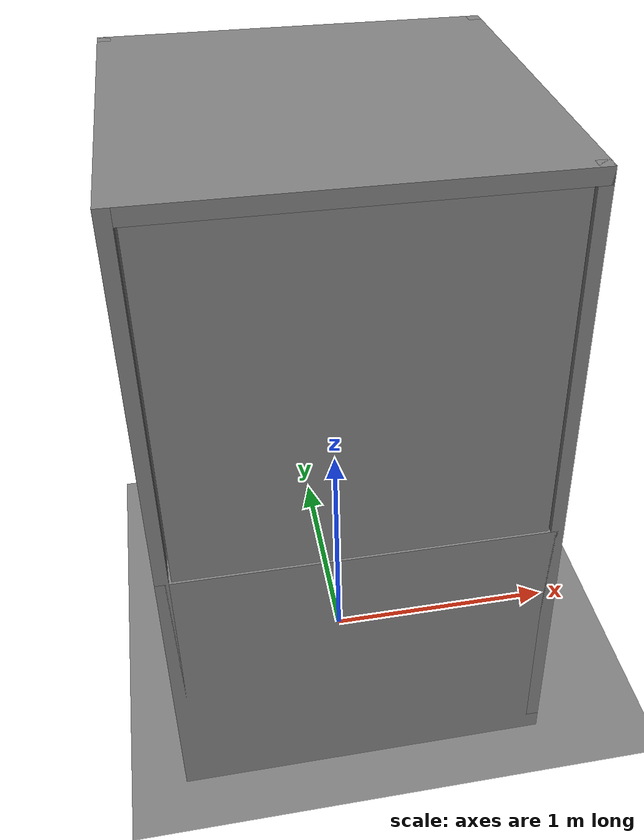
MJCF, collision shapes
<mujoco model="aic_world">
  <compiler angle="radian"/>

  <option gravity="0 0 -9.8" magnetic="5.5645e-06 2.28758e-05 -4.23884e-05"/>

  <visual>
    <headlight ambient="0 0 0" diffuse="0 0 0" specular="0 0 0"/>
  </visual>

  <default>
    <default class="world_default"/>
    <default class="cable_default">
      <joint damping="0.2"/>
    </default>
    <default class="sc_port_default">
      <geom friction="0.5 0.5"/>
    </default>
    <default class="nic_card_default">
      <geom friction="0.1 0.005 0.1"/>
    </default>
  </default>

  <extension>
    <plugin plugin="mujoco.elasticity.cable">
      <instance name="composite">
        <config key="twist" value="1e2"/>
        <config key="bend" value="4e1"/>
      </instance>
    </plugin>
  </extension>

  <asset>
    <texture type="2d" colorspace="linear" name="texture_40c09d03e70381a6858aaba3470a3c41133384b4031fa9131cbb5f4dc5cd3986_floor_visual_Plane" file="40c09d03e70381a6858aaba3470a3c41133384b4031fa9131cbb5f4dc5cd3986_floor_visual_b3a94635-54d6beff6424435d3828cb4c8a1278d9ea3964b0.png"/>
    <texture type="2d" colorspace="linear" name="texture_905de86c942092710a3b3b7c801a4a971c55ce1db8e8e66de2d222bccbf68920_sc_plug_visual_merged_0" file="905de86c942092710a3b3b7c801a4a971c55ce1db8e8e66de2d222bccbf68920_sc_plug_visual_5875f865-48f62b2f4840d852c7f39a01e6c183037dc1485b.png"/>
    <texture type="2d" colorspace="linear" name="texture_98c00f0bc914fd28942a5b5b497872ae817e62fdc7c7810ecaa8069a9692ceaf_lc_plug_visual_merged_0" file="98c00f0bc914fd28942a5b5b497872ae817e62fdc7c7810ecaa8069a9692ceaf_lc_plug_visual_03dabf32-0905e8a8aa368516e682f6ec84258100cdb4efef.png"/>
    <texture type="2d" colorspace="linear" name="texture_bac71237ef67393fcec4e1a5deb385aa5fe0d294b7e1711efc530aa1463ef5d6_sfp_module_visual_Body.005" file="bac71237ef67393fcec4e1a5deb385aa5fe0d294b7e1711efc530aa1463ef5d6_sfp_module_visual_8fc63b58-7471eafc55dcb668ae68adfe70a147b363ba3be9.png"/>
    <texture type="2d" colorspace="linear" name="texture_bac71237ef67393fcec4e1a5deb385aa5fe0d294b7e1711efc530aa1463ef5d6_sfp_module_visual_Body.005_1" file="bac71237ef67393fcec4e1a5deb385aa5fe0d294b7e1711efc530aa1463ef5d6_sfp_module_visual_1f09e86a-a4dc4a72bd6e778067310898a5c179607fd78966.png"/>
    <texture type="2d" colorspace="linear" name="texture_20c3c21d33ad91c02acd28d29c6619e4def43e4ad97f9963f1f40c69556a8667_nic_card_visual_merged_0" file="20c3c21d33ad91c02acd28d29c6619e4def43e4ad97f9963f1f40c69556a8667_nic_card_visual_45ced356-decb3c11fd49e8be2155fa2b1c64d354b4b1809a.png"/>
    <texture type="2d" colorspace="linear" name="texture_20c3c21d33ad91c02acd28d29c6619e4def43e4ad97f9963f1f40c69556a8667_nic_card_visual_merged_1" file="20c3c21d33ad91c02acd28d29c6619e4def43e4ad97f9963f1f40c69556a8667_nic_card_visual_39dce63a-b1ab28e3f7e42255c5bb13a337e50008ebdbcb02.png"/>
    <material name="material_e35a3160deff872a7475b59ee7dfb4969f85c5fc103de22f82442b320b077c85_enclosure_visual_V1014952.001" class="world_default" shininess="30" rgba="0.290196 0.290196 0.290196 1"/>
    <material name="material_e35a3160deff872a7475b59ee7dfb4969f85c5fc103de22f82442b320b077c85_enclosure_visual_V1014952.001_1" class="world_default" shininess="30" rgba="0.129412 0.129412 0.133333 1"/>
    <material name="material_e35a3160deff872a7475b59ee7dfb4969f85c5fc103de22f82442b320b077c85_light_visual_Plane.001" class="world_default" shininess="30" rgba="0.5 0.5 0.5 1"/>
    <material name="material_40c09d03e70381a6858aaba3470a3c41133384b4031fa9131cbb5f4dc5cd3986_floor_visual_Plane" class="world_default" texture="texture_40c09d03e70381a6858aaba3470a3c41133384b4031fa9131cbb5f4dc5cd3986_floor_visual_Plane" shininess="30" rgba="0.5 0.5 0.5 1"/>
    <material name="material_40c09d03e70381a6858aaba3470a3c41133384b4031fa9131cbb5f4dc5cd3986_walls_visual_Curve.001" class="world_default" shininess="30" rgba="0.0196078 0.0196078 0.0196078 1"/>
    <material name="material_40c09d03e70381a6858aaba3470a3c41133384b4031fa9131cbb5f4dc5cd3986_walls_visual_merged_1" class="world_default" shininess="30" rgba="0.262745 0.262745 0.262745 1"/>
    <material name="material_40c09d03e70381a6858aaba3470a3c41133384b4031fa9131cbb5f4dc5cd3986_walls_visual_Plane.003_1" class="world_default" shininess="30" rgba="0.8 0.8 0.8 1"/>
    <material name="material_40c09d03e70381a6858aaba3470a3c41133384b4031fa9131cbb5f4dc5cd3986_walls_visual_Plane.002" class="world_default" shininess="30" rgba="0.207843 0.207843 0.207843 1"/>
    <material name="material_905de86c942092710a3b3b7c801a4a971c55ce1db8e8e66de2d222bccbf68920_sc_plug_visual_merged_0" class="world_default" texture="texture_905de86c942092710a3b3b7c801a4a971c55ce1db8e8e66de2d222bccbf68920_sc_plug_visual_merged_0" shininess="30" rgba="0.5 0.5 0.5 1"/>
    <material name="material_98c00f0bc914fd28942a5b5b497872ae817e62fdc7c7810ecaa8069a9692ceaf_lc_plug_visual_merged_0" class="world_default" texture="texture_98c00f0bc914fd28942a5b5b497872ae817e62fdc7c7810ecaa8069a9692ceaf_lc_plug_visual_merged_0" shininess="30" rgba="0.5 0.5 0.5 1"/>
    <material name="material_bac71237ef67393fcec4e1a5deb385aa5fe0d294b7e1711efc530aa1463ef5d6_sfp_module_visual_Body.005" class="world_default" texture="texture_bac71237ef67393fcec4e1a5deb385aa5fe0d294b7e1711efc530aa1463ef5d6_sfp_module_visual_Body.005" shininess="30" rgba="0.5 0.5 0.5 1"/>
    <material name="material_bac71237ef67393fcec4e1a5deb385aa5fe0d294b7e1711efc530aa1463ef5d6_sfp_module_visual_Body.005_1" class="world_default" texture="texture_bac71237ef67393fcec4e1a5deb385aa5fe0d294b7e1711efc530aa1463ef5d6_sfp_module_visual_Body.005_1" shininess="30" rgba="0.5 0.5 0.5 1"/>
    <material name="material_7689a9b747d6b156977e79b2206b5e29540e3d66cde22b2879e5c8aaf9f30d90_base_visual_ISO_4762_-_M3_x_8.019" class="world_default" shininess="30" rgba="0.0352941 0.0352941 0.0313726 1"/>
    <material name="material_7689a9b747d6b156977e79b2206b5e29540e3d66cde22b2879e5c8aaf9f30d90_base_visual_ISO_4762_-_M3_x_8.019_1" class="world_default" shininess="30" rgba="0.0313726 0.0313726 0.0313726 1"/>
    <material name="material_7689a9b747d6b156977e79b2206b5e29540e3d66cde22b2879e5c8aaf9f30d90_base_visual_ISO_4762_-_M3_x_8.019_2" class="world_default" shininess="30" rgba="0.215686 0 0.215686 1"/>
    <material name="material_20c3c21d33ad91c02acd28d29c6619e4def43e4ad97f9963f1f40c69556a8667_nic_card_mount_visual_ISO_4762_-_M2_x_8.054" class="world_default" shininess="30" rgba="0.0352941 0.0352941 0.0313726 1"/>
    <material name="material_20c3c21d33ad91c02acd28d29c6619e4def43e4ad97f9963f1f40c69556a8667_nic_card_mount_visual_ISO_4762_-_M2_x_8.054_1" class="world_default" shininess="30" rgba="0.0313726 0.0313726 0.0313726 1"/>
    <material name="material_20c3c21d33ad91c02acd28d29c6619e4def43e4ad97f9963f1f40c69556a8667_nic_card_visual_merged_0" class="world_default" texture="texture_20c3c21d33ad91c02acd28d29c6619e4def43e4ad97f9963f1f40c69556a8667_nic_card_visual_merged_0" shininess="30" rgba="0.5 0.5 0.5 1"/>
    <material name="material_20c3c21d33ad91c02acd28d29c6619e4def43e4ad97f9963f1f40c69556a8667_nic_card_visual_merged_1" class="world_default" texture="texture_20c3c21d33ad91c02acd28d29c6619e4def43e4ad97f9963f1f40c69556a8667_nic_card_visual_merged_1" shininess="30" rgba="0.5 0.5 0.5 1"/>
    <material name="material_20c3c21d33ad91c02acd28d29c6619e4def43e4ad97f9963f1f40c69556a8667_nic_card_visual_Plane.029" class="world_default" shininess="30" rgba="0.0235294 0.0392157 0.0117647 1"/>
    <material name="material_20c3c21d33ad91c02acd28d29c6619e4def43e4ad97f9963f1f40c69556a8667_nic_card_visual_Cube.007" class="world_default" shininess="30" rgba="0 0 0 1"/>
    <mesh name="e35a3160deff872a7475b59ee7dfb4969f85c5fc103de22f82442b320b077c85_enclosure_visual_V1014952.001" class="world_default" content_type="model/obj" file="e35a3160deff872a7475b59ee7dfb4969f85c5fc103de22f82442b320b077c85_enclosure_visual_V1014952.001-c990efe7b9dfe87aa065fd6eb3960ce051ae2aef.obj" inertia="shell"/>
    <mesh name="e35a3160deff872a7475b59ee7dfb4969f85c5fc103de22f82442b320b077c85_enclosure_visual_V1014952.001_1" class="world_default" content_type="model/obj" file="e35a3160deff872a7475b59ee7dfb4969f85c5fc103de22f82442b320b077c85_enclosure_visual_V1014952.001_1-807e07de06af157c84b994a232617507a7059420.obj" inertia="shell"/>
    <mesh name="e35a3160deff872a7475b59ee7dfb4969f85c5fc103de22f82442b320b077c85_light_visual_Plane.001" class="world_default" content_type="model/obj" file="e35a3160deff872a7475b59ee7dfb4969f85c5fc103de22f82442b320b077c85_light_visual_Plane.001-a8a774a80bc239d73769a498eae528b206eebcb0.obj" inertia="shell"/>
    <mesh name="40c09d03e70381a6858aaba3470a3c41133384b4031fa9131cbb5f4dc5cd3986_floor_visual_Plane" class="world_default" content_type="model/obj" file="40c09d03e70381a6858aaba3470a3c41133384b4031fa9131cbb5f4dc5cd3986_floor_visual_Plane-4dc7f6150ad7c239769a0860a01efb2015657aea.obj" inertia="shell"/>
    <mesh name="40c09d03e70381a6858aaba3470a3c41133384b4031fa9131cbb5f4dc5cd3986_walls_visual_Curve.001" class="world_default" content_type="model/obj" file="40c09d03e70381a6858aaba3470a3c41133384b4031fa9131cbb5f4dc5cd3986_walls_visual_Curve.001-4d7c79ac2e958832fdb15589262141ca1b80d3a5.obj" inertia="shell"/>
    <mesh name="40c09d03e70381a6858aaba3470a3c41133384b4031fa9131cbb5f4dc5cd3986_walls_visual_merged_1" class="world_default" content_type="model/obj" file="40c09d03e70381a6858aaba3470a3c41133384b4031fa9131cbb5f4dc5cd3986_walls_visual_merged_1-359a22140d528747936e80bedf90e1437a177a9f.obj" inertia="shell"/>
    <mesh name="40c09d03e70381a6858aaba3470a3c41133384b4031fa9131cbb5f4dc5cd3986_walls_visual_Plane.003_1" class="world_default" content_type="model/obj" file="40c09d03e70381a6858aaba3470a3c41133384b4031fa9131cbb5f4dc5cd3986_walls_visual_Plane.003_1-cd05ed21fa19a2784fb772d7519abf7c31c8b85f.obj" inertia="shell"/>
    <mesh name="40c09d03e70381a6858aaba3470a3c41133384b4031fa9131cbb5f4dc5cd3986_walls_visual_Plane.002" class="world_default" content_type="model/obj" file="40c09d03e70381a6858aaba3470a3c41133384b4031fa9131cbb5f4dc5cd3986_walls_visual_Plane.002-ee4f781765eec46c2256d941981732d4b1857f24.obj" inertia="shell"/>
    <mesh name="905de86c942092710a3b3b7c801a4a971c55ce1db8e8e66de2d222bccbf68920_sc_plug_visual_merged_0" class="world_default" content_type="model/obj" file="905de86c942092710a3b3b7c801a4a971c55ce1db8e8e66de2d222bccbf68920_sc_plug_visual_merged_0-67f94accf247f722dd4954d7448d7956402901f2.obj" inertia="shell"/>
    <mesh name="98c00f0bc914fd28942a5b5b497872ae817e62fdc7c7810ecaa8069a9692ceaf_lc_plug_visual_merged_0" class="world_default" content_type="model/obj" file="98c00f0bc914fd28942a5b5b497872ae817e62fdc7c7810ecaa8069a9692ceaf_lc_plug_visual_merged_0-fdaf59710fc3cc118a7df05add4ff4205edda4ef.obj" inertia="shell"/>
    <mesh name="bac71237ef67393fcec4e1a5deb385aa5fe0d294b7e1711efc530aa1463ef5d6_sfp_module_visual_Body.005" class="world_default" content_type="model/obj" file="bac71237ef67393fcec4e1a5deb385aa5fe0d294b7e1711efc530aa1463ef5d6_sfp_module_visual_Body.005-f93147e1e403de321fb70c06a4b1e00f20feb9fd.obj" inertia="shell"/>
    <mesh name="bac71237ef67393fcec4e1a5deb385aa5fe0d294b7e1711efc530aa1463ef5d6_sfp_module_visual_Body.005_1" class="world_default" content_type="model/obj" file="bac71237ef67393fcec4e1a5deb385aa5fe0d294b7e1711efc530aa1463ef5d6_sfp_module_visual_Body.005_1-4af964a95522e2593eb6381eca4f09ef239782c7.obj" inertia="shell"/>
    <mesh name="7689a9b747d6b156977e79b2206b5e29540e3d66cde22b2879e5c8aaf9f30d90_base_visual_ISO_4762_-_M3_x_8.019" class="world_default" content_type="model/obj" file="7689a9b747d6b156977e79b2206b5e29540e3d66cde22b2879e5c8aaf9f30d90_base_visual_ISO_4762_-_M3_x_8.019-f814bb518c42769543ab6246809f3fe4af5c2b64.obj" inertia="shell"/>
    <mesh name="7689a9b747d6b156977e79b2206b5e29540e3d66cde22b2879e5c8aaf9f30d90_base_visual_ISO_4762_-_M3_x_8.019_1" class="world_default" content_type="model/obj" file="7689a9b747d6b156977e79b2206b5e29540e3d66cde22b2879e5c8aaf9f30d90_base_visual_ISO_4762_-_M3_x_8.019_1-0b276ba9910a7642121235b62d2afc47c3995782.obj" inertia="shell"/>
    <mesh name="7689a9b747d6b156977e79b2206b5e29540e3d66cde22b2879e5c8aaf9f30d90_base_visual_ISO_4762_-_M3_x_8.019_2" class="world_default" content_type="model/obj" file="7689a9b747d6b156977e79b2206b5e29540e3d66cde22b2879e5c8aaf9f30d90_base_visual_ISO_4762_-_M3_x_8.019_2-7b96569be9572803417c5650ee83c9c883b44191.obj" inertia="shell"/>
    <mesh name="20c3c21d33ad91c02acd28d29c6619e4def43e4ad97f9963f1f40c69556a8667_nic_card_mount_visual_ISO_4762_-_M2_x_8.054" class="world_default" content_type="model/obj" file="20c3c21d33ad91c02acd28d29c6619e4def43e4ad97f9963f1f40c69556a8667_nic_card_mount_visual_ISO_4762_-_M2_x_8.054-865f98896565b646973302f5cc3bb20e1474682a.obj" inertia="shell"/>
    <mesh name="20c3c21d33ad91c02acd28d29c6619e4def43e4ad97f9963f1f40c69556a8667_nic_card_mount_visual_ISO_4762_-_M2_x_8.054_1" class="world_default" content_type="model/obj" file="20c3c21d33ad91c02acd28d29c6619e4def43e4ad97f9963f1f40c69556a8667_nic_card_mount_visual_ISO_4762_-_M2_x_8.054_1-5adcf23490bd5794ededbd17ac1064f40ca2f1d8.obj" inertia="shell"/>
    <mesh name="20c3c21d33ad91c02acd28d29c6619e4def43e4ad97f9963f1f40c69556a8667_nic_card_visual_merged_0" class="world_default" content_type="model/obj" file="20c3c21d33ad91c02acd28d29c6619e4def43e4ad97f9963f1f40c69556a8667_nic_card_visual_merged_0-b45f6200bfaa68e87732b114c99af8b477e66413.obj" inertia="shell"/>
    <mesh name="20c3c21d33ad91c02acd28d29c6619e4def43e4ad97f9963f1f40c69556a8667_nic_card_visual_merged_1" class="world_default" content_type="model/obj" file="20c3c21d33ad91c02acd28d29c6619e4def43e4ad97f9963f1f40c69556a8667_nic_card_visual_merged_1-0e349b7b61b9f4e172feb5320f1e8146f966f938.obj" inertia="shell"/>
    <mesh name="20c3c21d33ad91c02acd28d29c6619e4def43e4ad97f9963f1f40c69556a8667_nic_card_visual_Plane.029" class="world_default" content_type="model/obj" file="20c3c21d33ad91c02acd28d29c6619e4def43e4ad97f9963f1f40c69556a8667_nic_card_visual_Plane.029-3e628f059a97b4e803370a2b5e0abfcfac063972.obj" inertia="shell"/>
    <mesh name="20c3c21d33ad91c02acd28d29c6619e4def43e4ad97f9963f1f40c69556a8667_nic_card_visual_Cube.007" class="world_default" content_type="model/obj" file="20c3c21d33ad91c02acd28d29c6619e4def43e4ad97f9963f1f40c69556a8667_nic_card_visual_Cube.007-f8fbe4a2582482ceb99cb3e87bdf6d5a3daf05ec.obj" inertia="shell"/>
  </asset>

  <worldbody>
    <light name="enclosure_light" class="world_default" pos="0 0 2.5" dir="0 0 -1" intensity="0.4" range="2" attenuation="1 0.01 0.001" cutoff="114.592" exponent="0.993023" diffuse="1 1 1" specular="0.1 0.1 0.1"/>
    <light name="ceiling_01" class="world_default" pos="2 2 6" dir="0 0 -1" intensity="2" range="9" castshadow="false" attenuation="1 0.01 0.001" cutoff="360" diffuse="1 1 1" specular="0.1 0.1 0.1"/>
    <light name="ceiling_02" class="world_default" pos="-2 -2 6" dir="0 0 -1" intensity="2" range="9" castshadow="false" attenuation="1 0.01 0.001" cutoff="360" diffuse="1 1 1" specular="0.1 0.1 0.1"/>
    <body name="enclosure_link">
      <inertial pos="0 0 0" mass="1" diaginertia="1 1 1"/>
      <geom name="v1015026001_collider_box" class="world_default" size="0.75 0.569492 0.75" pos="-0.010998 0.009283 0.569706" quat="1.22475e-07 -1.22474e-07 0.707107 0.707107" type="box" group="3"/>
      <geom name="v1015028001_collider_box" class="world_default" size="0.0254 0.0254 1.25" pos="0.713602 0.733883 1.3292" quat="1.73205e-07 0 0 -1" type="box" group="3"/>
      <geom name="v1015013001_collider_box" class="world_default" size="0.0304 0.75 0.75" pos="-0.010998 0.009283 2.5488" quat="0.707107 0 -0.707107 0" type="box" group="3"/>
      <geom name="v1015027_collider_box" class="world_default" size="0.0254 0.0254 1.25" pos="-0.735598 0.733883 1.3292" quat="1.73205e-07 0 0 -1" type="box" group="3"/>
      <geom name="v1015029_collider_box" class="world_default" size="0.0254 0.0254 1.25" pos="-0.735598 -0.715317 1.3292" quat="0 1.73205e-07 -1 -1.73205e-07" type="box" group="3"/>
      <geom name="v1015030_collider_box" class="world_default" size="0.0254 0.0254 1.25" pos="0.713602 -0.715317 1.3292" quat="1.73205e-07 0 0 -1" type="box" group="3"/>
      <geom name="enclosure_visual" class="world_default" type="mesh" contype="0" conaffinity="0" material="material_e35a3160deff872a7475b59ee7dfb4969f85c5fc103de22f82442b320b077c85_enclosure_visual_V1014952.001" mesh="e35a3160deff872a7475b59ee7dfb4969f85c5fc103de22f82442b320b077c85_enclosure_visual_V1014952.001"/>
      <geom name="enclosure_visual_0" class="world_default" type="mesh" contype="0" conaffinity="0" material="material_e35a3160deff872a7475b59ee7dfb4969f85c5fc103de22f82442b320b077c85_enclosure_visual_V1014952.001_1" mesh="e35a3160deff872a7475b59ee7dfb4969f85c5fc103de22f82442b320b077c85_enclosure_visual_V1014952.001_1"/>
      <geom name="light_visual" class="world_default" type="mesh" contype="0" conaffinity="0" material="material_e35a3160deff872a7475b59ee7dfb4969f85c5fc103de22f82442b320b077c85_light_visual_Plane.001" mesh="e35a3160deff872a7475b59ee7dfb4969f85c5fc103de22f82442b320b077c85_light_visual_Plane.001"/>
    </body>
    <body name="enclosure_walls_link">
      <inertial pos="0 0 0" mass="1" diaginertia="1 1 1"/>
      <geom name="v1015062006_collider_box" class="world_default" size="0.0250005 0.6796 0.6892" pos="-0.010998 0.734284 1.8288" quat="0.5 0.5 -0.5 -0.5" type="box" group="3"/>
      <geom name="v1015062005_collider_box" class="world_default" size="0.6892 0.6796 0.025" pos="-0.735998 0.009283 1.8288" quat="0.5 0.5 -0.5 -0.5" type="box" group="3"/>
      <geom name="v1015062007_collider_box" class="world_default" size="0.025 0.6846 0.6892" pos="-0.010998 -0.715717 1.8338" quat="0.5 0.5 -0.5 -0.5" type="box" group="3"/>
      <geom name="v1015062008_collider_box" class="world_default" size="0.6892 0.6846 0.025" pos="0.714002 0.009283 1.8338" quat="0.5 0.5 -0.5 -0.5" type="box" group="3"/>
    </body>
    <body name="floor_link">
      <inertial pos="0 0 0" mass="1" diaginertia="1 1 1"/>
      <geom name="floor_cylinder" class="world_default" size="5 5 1" type="plane" group="3"/>
      <geom name="floor_visual" class="world_default" type="mesh" contype="0" conaffinity="0" material="material_40c09d03e70381a6858aaba3470a3c41133384b4031fa9131cbb5f4dc5cd3986_floor_visual_Plane" mesh="40c09d03e70381a6858aaba3470a3c41133384b4031fa9131cbb5f4dc5cd3986_floor_visual_Plane"/>
      <geom name="walls_visual" class="world_default" type="mesh" contype="0" conaffinity="0" material="material_40c09d03e70381a6858aaba3470a3c41133384b4031fa9131cbb5f4dc5cd3986_walls_visual_Curve.001" mesh="40c09d03e70381a6858aaba3470a3c41133384b4031fa9131cbb5f4dc5cd3986_walls_visual_Curve.001"/>
      <geom name="walls_visual_0" class="world_default" type="mesh" contype="0" conaffinity="0" material="material_40c09d03e70381a6858aaba3470a3c41133384b4031fa9131cbb5f4dc5cd3986_walls_visual_merged_1" mesh="40c09d03e70381a6858aaba3470a3c41133384b4031fa9131cbb5f4dc5cd3986_walls_visual_merged_1"/>
      <geom name="walls_visual_1" class="world_default" type="mesh" contype="0" conaffinity="0" material="material_40c09d03e70381a6858aaba3470a3c41133384b4031fa9131cbb5f4dc5cd3986_walls_visual_Plane.003_1" mesh="40c09d03e70381a6858aaba3470a3c41133384b4031fa9131cbb5f4dc5cd3986_walls_visual_Plane.003_1"/>
      <geom name="walls_visual_2" class="world_default" type="mesh" contype="0" conaffinity="0" material="material_40c09d03e70381a6858aaba3470a3c41133384b4031fa9131cbb5f4dc5cd3986_walls_visual_Plane.002" mesh="40c09d03e70381a6858aaba3470a3c41133384b4031fa9131cbb5f4dc5cd3986_walls_visual_Plane.002"/>
    </body>
    <body name="cable_end_0" childclass="cable_default" pos="0.171400 0.020606 1.511889" quat="0.712741 0.312130 -0.052173 0.625982">
      <freejoint name="cable_end_0_free"/>
      <inertial pos="0 0 0" mass="0.0025" diaginertia="1e-6 1e-6 1e-6"/>
      <geom name="base_vis" class="world_default" size="0.002" contype="0" conaffinity="0"/>
      <plugin instance="composite"/>
      <body name="cable_connection_0" pos="-1.15358e-08 3.23085e-08 -1.51889e-07" quat="0.924832 -0.0904407 -0.328827 0.168458">
        <inertial pos="0 0 0" mass="0.01" diaginertia="1e-6 1e-6 1e-6"/>
        <joint name="joint_connection_end_0" class="world_default" pos="0 0 0" type="ball" damping="0.2"/>
        <geom name="visual_0_0" class="world_default" size="0.001 0.00180278" pos="-0.00180278 0.002 0" quat="0.676768 0.204909 0.676764 -0.204908" type="cylinder" contype="0" conaffinity="0"/>
        <geom name="visual_1_0" class="world_default" size="0.001 0.00180278" pos="-0.00180278 -0.002 0" quat="0.676768 -0.204909 0.676764 0.204908" type="cylinder" contype="0" conaffinity="0"/>
        <plugin instance="composite"/>
        <body name="link_1" pos="0.0020611 -0.00581162 -0.0231945" quat="-0.0746205 -0.2673 -0.954864 0.10591">
          <inertial pos="0 0 0" mass="0.0025" diaginertia="1e-6 1e-6 1e-6"/>
          <joint name="joint_end_0" pos="0 0 -0.024" type="ball"/>
          <geom name="link_1_collision" size="0.002 0.018" pos="0 0 0.006" type="cylinder" group="3"/>
          <geom name="sphere_1_collision" size="0.002" pos="0 0 0.024" group="3"/>
          <geom name="link_1_vis" size="0.002 0.024" type="cylinder" contype="0" conaffinity="0"/>
          <geom name="sphere_1_vis" size="0.002" pos="0 0 0.024" contype="0" conaffinity="0"/>
          <plugin instance="composite"/>
          <body name="link_2" pos="0.00623053 -0.00759574 0.0458975" quat="0.97762 0.158907 0.136222 -0.0212393">
            <inertial pos="0 0 0" mass="0.0025" diaginertia="1e-6 1e-6 1e-6"/>
            <joint name="joint_1" pos="0 0 -0.024" type="ball"/>
            <geom name="link_2_collision" size="0.002 0.024" type="cylinder" group="3"/>
            <geom name="sphere_2_collision" size="0.002" pos="0 0 0.024" group="3"/>
            <geom name="link_2_vis" size="0.002 0.024" type="cylinder" contype="0" conaffinity="0"/>
            <geom name="sphere_2_vis" size="0.002" pos="0 0 0.024" contype="0" conaffinity="0"/>
            <plugin instance="composite"/>
            <body name="link_3" pos="0.000484761 -0.00664666 0.0470565" quat="0.989882 0.139594 0.0132513 -0.0216966">
              <inertial pos="0 0 0" mass="0.0025" diaginertia="1e-6 1e-6 1e-6"/>
              <joint name="joint_2" pos="0 0 -0.024" type="ball"/>
              <geom name="link_3_collision" size="0.002 0.024" type="cylinder" group="3"/>
              <geom name="sphere_3_collision" size="0.002" pos="0 0 0.024" group="3"/>
              <geom name="link_3_vis" size="0.002 0.024" type="cylinder" contype="0" conaffinity="0"/>
              <geom name="sphere_3_vis" size="0.002" pos="0 0 0.024" contype="0" conaffinity="0"/>
              <plugin instance="composite"/>
              <body name="link_4" pos="-0.00211262 -0.00462385 0.0474555" quat="0.994001 0.0979584 -0.0418346 -0.024834">
                <inertial pos="0 0 0" mass="0.0025" diaginertia="1e-6 1e-6 1e-6"/>
                <joint name="joint_3" pos="0 0 -0.024" type="ball"/>
                <geom name="link_4_collision" size="0.002 0.024" type="cylinder" group="3"/>
                <geom name="sphere_4_collision" size="0.002" pos="0 0 0.024" group="3"/>
                <geom name="link_4_vis" size="0.002 0.024" type="cylinder" contype="0" conaffinity="0"/>
                <geom name="sphere_4_vis" size="0.002" pos="0 0 0.024" contype="0" conaffinity="0"/>
                <plugin instance="composite"/>
                <body name="link_5" pos="-0.00360829 -0.00309056 0.0475256" quat="0.994231 0.0677031 -0.0728716 -0.0401431">
                  <inertial pos="0 0 0" mass="0.0025" diaginertia="1e-6 1e-6 1e-6"/>
                  <joint name="joint_4" pos="0 0 -0.024" type="ball"/>
                  <geom name="link_5_collision" size="0.002 0.024" type="cylinder" group="3"/>
                  <geom name="sphere_5_collision" size="0.002" pos="0 0 0.024" group="3"/>
                  <geom name="link_5_vis" size="0.002 0.024" type="cylinder" contype="0" conaffinity="0"/>
                  <geom name="sphere_5_vis" size="0.002" pos="0 0 0.024" contype="0" conaffinity="0"/>
                  <plugin instance="composite"/>
                  <body name="link_6" pos="-0.00394715 -0.00175287 0.0476085" quat="0.9939 0.041842 -0.0800956 -0.0632216">
                    <inertial pos="0 0 0" mass="0.0025" diaginertia="1e-6 1e-6 1e-6"/>
                    <joint name="joint_5" pos="0 0 -0.024" type="ball"/>
                    <geom name="link_6_collision" size="0.002 0.024" type="cylinder" group="3"/>
                    <geom name="sphere_6_collision" size="0.002" pos="0 0 0.024" group="3"/>
                    <geom name="link_6_vis" size="0.002 0.024" type="cylinder" contype="0" conaffinity="0"/>
                    <geom name="sphere_6_vis" size="0.002" pos="0 0 0.024" contype="0" conaffinity="0"/>
                    <plugin instance="composite"/>
                    <body name="link_7" pos="-0.00349173 -0.000684139 0.0477353" quat="0.993461 0.0205734 -0.0714312 -0.0866575">
                      <inertial pos="0 0 0" mass="0.0025" diaginertia="1e-6 1e-6 1e-6"/>
                      <joint name="joint_6" pos="0 0 -0.024" type="ball"/>
                      <geom name="link_7_collision" size="0.002 0.024" type="cylinder" group="3"/>
                      <geom name="sphere_7_collision" size="0.002" pos="0 0 0.024" group="3"/>
                      <geom name="link_7_vis" size="0.002 0.024" type="cylinder" contype="0" conaffinity="0"/>
                      <geom name="sphere_7_vis" size="0.002" pos="0 0 0.024" contype="0" conaffinity="0"/>
                      <plugin instance="composite"/>
                      <body name="link_8" pos="-0.00242919 0.000196332 0.0478766" quat="0.993479 0.00109682 -0.0508305 -0.102054">
                        <inertial pos="0 0 0" mass="0.0025" diaginertia="1e-6 1e-6 1e-6"/>
                        <joint name="joint_7" pos="0 0 -0.024" type="ball"/>
                        <geom name="link_8_collision" size="0.002 0.024" type="cylinder" group="3"/>
                        <geom name="sphere_8_collision" size="0.002" pos="0 0 0.024" group="3"/>
                        <geom name="link_8_vis" size="0.002 0.024" type="cylinder" contype="0" conaffinity="0"/>
                        <geom name="sphere_8_vis" size="0.002" pos="0 0 0.024" contype="0" conaffinity="0"/>
                        <plugin instance="composite"/>
                        <body name="link_9" pos="-0.00121918 0.000962879 0.0479509" quat="0.994022 -0.0173135 -0.0273665 -0.10427">
                          <inertial pos="0 0 0" mass="0.0025" diaginertia="1e-6 1e-6 1e-6"/>
                          <joint name="joint_8" pos="0 0 -0.024" type="ball"/>
                          <geom name="link_9_collision" size="0.002 0.024" type="cylinder" group="3"/>
                          <geom name="sphere_9_collision" size="0.002" pos="0 0 0.024" group="3"/>
                          <geom name="link_9_vis" size="0.002 0.024" type="cylinder" contype="0" conaffinity="0"/>
                          <geom name="sphere_9_vis" size="0.002" pos="0 0 0.024" contype="0" conaffinity="0"/>
                          <plugin instance="composite"/>
                          <body name="link_10" pos="-0.000351883 0.00168234 0.0479387" quat="0.994797 -0.0341906 -0.0106568 -0.0953699">
                            <inertial pos="0 0 0" mass="0.0025" diaginertia="1e-6 1e-6 1e-6"/>
                            <joint name="joint_9" pos="0 0 -0.024" type="ball"/>
                            <geom name="link_10_collision" size="0.002 0.024" type="cylinder" group="3"/>
                            <geom name="sphere_10_collision" size="0.002" pos="0 0 0.024" group="3"/>
                            <geom name="link_10_vis" size="0.002 0.024" type="cylinder" contype="0" conaffinity="0"/>
                            <geom name="sphere_10_vis" size="0.002" pos="0 0 0.024" contype="0" conaffinity="0"/>
                            <plugin instance="composite"/>
                            <body name="link_11" pos="0.00119349 0.00255711 0.0478346" quat="0.99406 -0.0554265 0.0198991 -0.091522">
                              <inertial pos="0 0 0" mass="0.0025" diaginertia="1e-6 1e-6 1e-6"/>
                              <joint name="joint_10" pos="0 0 -0.024" type="ball"/>
                              <geom name="link_11_collision" size="0.002 0.024" type="cylinder" group="3"/>
                              <geom name="sphere_11_collision" size="0.002" pos="0 0 0.024" group="3"/>
                              <geom name="link_11_vis" size="0.002 0.024" type="cylinder" contype="0" conaffinity="0"/>
                              <geom name="sphere_11_vis" size="0.002" pos="0 0 0.024" contype="0" conaffinity="0"/>
                              <plugin instance="composite"/>
                              <body name="link_12" pos="0.00319054 0.00406578 0.0474387" quat="0.991778 -0.0895878 0.0608574 -0.0681713">
                                <inertial pos="0 0 0" mass="0.0025" diaginertia="1e-6 1e-6 1e-6"/>
                                <joint name="joint_11" pos="0 0 -0.024" type="ball"/>
                                <geom name="link_12_collision" size="0.002 0.024" type="cylinder" group="3"/>
                                <geom name="sphere_12_collision" size="0.002" pos="0 0 0.024" group="3"/>
                                <geom name="link_12_vis" size="0.002 0.024" type="cylinder" contype="0" conaffinity="0"/>
                                <geom name="sphere_12_vis" size="0.002" pos="0 0 0.024" contype="0" conaffinity="0"/>
                                <plugin instance="composite"/>
                                <body name="link_13" pos="0.00474891 0.0058193 0.046795" quat="0.986508 -0.126845 0.0949864 -0.0411007">
                                  <inertial pos="0 0 0" mass="0.0025" diaginertia="1e-6 1e-6 1e-6"/>
                                  <joint name="joint_12" pos="0 0 -0.024" type="ball"/>
                                  <geom name="link_13_collision" size="0.002 0.024" type="cylinder" group="3"/>
                                  <geom name="sphere_13_collision" size="0.002" pos="0 0 0.024" group="3"/>
                                  <geom name="link_13_vis" size="0.002 0.024" type="cylinder" contype="0" conaffinity="0"/>
                                  <geom name="sphere_13_vis" size="0.002" pos="0 0 0.024" contype="0" conaffinity="0"/>
                                  <plugin instance="composite"/>
                                  <body name="link_14" pos="0.00584348 0.00736244 0.0460836" quat="0.97972 -0.158355 0.121915 -0.0144632">
                                    <inertial pos="0 0 0" mass="0.0025" diaginertia="1e-6 1e-6 1e-6"/>
                                    <joint name="joint_13" pos="0 0 -0.024" type="ball"/>
                                    <geom name="link_14_collision" size="0.002 0.024" type="cylinder" group="3"/>
                                    <geom name="sphere_14_collision" size="0.002" pos="0 0 0.024" group="3"/>
                                    <geom name="link_14_vis" size="0.002 0.024" type="cylinder" contype="0" conaffinity="0"/>
                                    <geom name="sphere_14_vis" size="0.002" pos="0 0 0.024" contype="0" conaffinity="0"/>
                                    <plugin instance="composite"/>
                                    <body name="link_15" pos="0.00657444 0.00808387 0.0456208" quat="0.974855 -0.171395 0.142112 0.00928594">
                                      <inertial pos="0 0 0" mass="0.0025" diaginertia="1e-6 1e-6 1e-6"/>
                                      <joint name="joint_14" pos="0 0 -0.024" type="ball"/>
                                      <geom name="link_15_collision" size="0.002 0.024" type="cylinder" group="3"/>
                                      <geom name="sphere_15_collision" size="0.002" pos="0 0 0.024" group="3"/>
                                      <geom name="link_15_vis" size="0.002 0.024" type="cylinder" contype="0" conaffinity="0"/>
                                      <geom name="sphere_15_vis" size="0.002" pos="0 0 0.024" contype="0" conaffinity="0"/>
                                      <plugin instance="composite"/>
                                      <body name="link_16" pos="0.00686145 0.0076216 0.0457001" quat="0.975331 -0.158494 0.151096 0.0278976">
                                        <inertial pos="0 0 0" mass="0.0025" diaginertia="1e-6 1e-6 1e-6"/>
                                        <joint name="joint_15" pos="0 0 -0.024" type="ball"/>
                                        <geom name="link_16_collision" size="0.002 0.024" type="cylinder" group="3"/>
                                        <geom name="sphere_16_collision" size="0.002" pos="0 0 0.024" group="3"/>
                                        <geom name="link_16_vis" size="0.002 0.024" type="cylinder" contype="0" conaffinity="0"/>
                                        <geom name="sphere_16_vis" size="0.002" pos="0 0 0.024" contype="0" conaffinity="0"/>
                                        <plugin instance="composite"/>
                                        <body name="link_17" pos="0.00677719 0.00603486 0.0462201" quat="0.980459 -0.122151 0.148953 0.039893">
                                          <inertial pos="0 0 0" mass="0.0025" diaginertia="1e-6 1e-6 1e-6"/>
                                          <joint name="joint_16" pos="0 0 -0.024" type="ball"/>
                                          <geom name="link_17_collision" size="0.002 0.024" type="cylinder" group="3"/>
                                          <geom name="sphere_17_collision" size="0.002" pos="0 0 0.024" group="3"/>
                                          <geom name="link_17_vis" size="0.002 0.024" type="cylinder" contype="0" conaffinity="0"/>
                                          <geom name="sphere_17_vis" size="0.002" pos="0 0 0.024" contype="0" conaffinity="0"/>
                                          <plugin instance="composite"/>
                                          <body name="link_18" pos="0.00641558 0.00358927 0.0468467" quat="0.986935 -0.0695774 0.138528 0.0439144">
                                            <inertial pos="0 0 0" mass="0.0025" diaginertia="1e-6 1e-6 1e-6"/>
                                            <joint name="joint_17" pos="0 0 -0.024" type="ball"/>
                                            <geom name="link_18_collision" size="0.002 0.024" type="cylinder" group="3"/>
                                            <geom name="sphere_18_collision" size="0.002" pos="0 0 0.024" group="3"/>
                                            <geom name="link_18_vis" size="0.002 0.024" type="cylinder" contype="0" conaffinity="0"/>
                                            <geom name="sphere_18_vis" size="0.002" pos="0 0 0.024" contype="0" conaffinity="0"/>
                                            <plugin instance="composite"/>
                                            <body name="link_19" pos="0.00642182 0.00141542 0.0470825" quat="0.98964 -0.0245289 0.136141 0.0384157">
                                              <inertial pos="0 0 0" mass="0.0025" diaginertia="1e-6 1e-6 1e-6"/>
                                              <joint name="joint_18" pos="0 0 -0.024" type="ball"/>
                                              <geom name="link_19_collision" size="0.002 0.024" type="cylinder" group="3"/>
                                              <geom name="sphere_19_collision" size="0.002" pos="0 0 0.024" group="3"/>
                                              <geom name="link_19_vis" size="0.002 0.024" type="cylinder" contype="0" conaffinity="0"/>
                                              <geom name="sphere_19_vis" size="0.002" pos="0 0 0.024" contype="0" conaffinity="0"/>
                                              <plugin instance="composite"/>
                                              <body name="link_20" pos="0.00595959 -0.00102227 0.0472279" quat="0.991507 0.0250123 0.124502 0.0280756">
                                                <inertial pos="0 0 0" mass="0.0025" diaginertia="1e-6 1e-6 1e-6"/>
                                                <joint name="joint_19" pos="0 0 -0.024" type="ball"/>
                                                <geom name="link_20_collision" size="0.002 0.024" type="cylinder" group="3"/>
                                                <geom name="sphere_20_collision" size="0.002" pos="0 0 0.024" group="3"/>
                                                <geom name="link_20_vis" size="0.002 0.024" type="cylinder" contype="0" conaffinity="0"/>
                                                <geom name="sphere_20_vis" size="0.002" pos="0 0 0.024" contype="0" conaffinity="0"/>
                                                <plugin instance="composite"/>
                                                <body name="cable_connection_1" pos="1.13152e-06 -3.79798e-07 0.0240002" quat="0.778115 0.0587297 -0.624119 -0.0395478">
                                                  <inertial pos="0 0 0" mass="0.01" diaginertia="1e-6 1e-6 1e-6"/>
                                                  <joint name="joint_connection_end_1" class="world_default" pos="0 0 0" type="ball"/>
                                                  <geom name="collision_0" class="world_default" size="0.001 0.00367636" pos="0.00367636 -0.00425 0" quat="0.673802 0.214463 0.673798 -0.214461" type="cylinder" group="3"/>
                                                  <geom name="collision_1" class="world_default" size="0.001 0.00367636" pos="0.00367636 0.00425 0" quat="0.673802 -0.214463 0.673798 0.214461" type="cylinder" group="3"/>
                                                  <geom name="visual_0" class="world_default" size="0.001 0.00367636" pos="0.00367636 -0.00425 0" quat="0.673802 0.214463 0.673798 -0.214461" type="cylinder" contype="0" conaffinity="0"/>
                                                  <geom name="visual_1" class="world_default" size="0.001 0.00367636" pos="0.00367636 0.00425 0" quat="0.673802 -0.214463 0.673798 0.214461" type="cylinder" contype="0" conaffinity="0"/>
                                                  <plugin instance="composite"/>
                                                  <body name="sc_plug_link" pos="0.052 3.3214e-09 9.53423e-08" quat="1 1.0224e-07 -6.91324e-08 7.65615e-08">
                                                    <inertial pos="-0.00907511 4.9566e-05 8.71699e-06" quat="0.000872542 0.70691 -0.000868656 0.707302" mass="0.04" diaginertia="8.85404e-06 7.17322e-06 2.12253e-06"/>
                                                    <geom name="housing blue_predeterminado005_collider_box" class="world_default" size="0.0063605 0.0045 0.00365" pos="0.002038 0.006344 4e-06" type="box" group="3"/>
                                                    <geom name="housing blue_predeterminado005_collider_box.001" class="world_default" size="0.0063605 0.0045 0.00365" pos="0.002038 -0.006344 4e-06" type="box" group="3"/>
                                                    <geom name="housing blue_predeterminado005_collider_box.002" class="world_default" size="0.006861 0.0035 0.00365" pos="0.002539 0.006344 4e-06" type="box" group="3"/>
                                                    <geom name="housing blue_predeterminado005_collider_box.003" class="world_default" size="0.006861 0.0035 0.00365" pos="0.002539 -0.006344 4e-06" type="box" group="3"/>
                                                    <geom name="housing blue_predeterminado005_collider_box.004" class="world_default" size="0.001 0.000705 0.00365" pos="0.008191 0.003056 4e-06" quat="0.92388 0 0 -0.382683" type="box" group="3"/>
                                                    <geom name="housing blue_predeterminado005_collider_box.005" class="world_default" size="0.001 0.000705 0.00365" pos="0.008191 0.009636 4e-06" quat="0.92388 0 0 0.382683" type="box" group="3"/>
                                                    <geom name="housing blue_predeterminado005_collider_box.006" class="world_default" size="0.001 0.000705 0.00365" pos="0.008191 -0.009636 4e-06" quat="0.92388 0 0 -0.382683" type="box" group="3"/>
                                                    <geom name="housing blue_predeterminado005_collider_box.007" class="world_default" size="0.001 0.000705 0.00365" pos="0.008191 -0.003056 4e-06" quat="0.92388 0 0 0.382683" type="box" group="3"/>
                                                    <geom name="cube002_collider_box" class="world_default" size="0.006275 0.0125 0.00505" pos="-0.010291 0 0" type="box" group="3"/>
                                                    <geom name="cylinder011_collider_cylinder" class="world_default" size="0.0029 0.014605" pos="-0.031147 -0.00635 0" quat="0.707107 0 0.707107 0" type="cylinder" group="3"/>
                                                    <geom name="cylinder005_collider_cylinder" class="world_default" size="0.0029 0.015799" pos="-0.029953 0.00635 0" quat="0.707107 0 0.707107 0" type="cylinder" group="3"/>
                                                    <geom name="ferula_predeterminado005_collider_cylinder" class="world_default" size="0.00125 0.007" pos="0.00465 -0.00635 0" quat="0.707107 0 0.707107 0" type="cylinder" group="3"/>
                                                    <geom name="ferula_predeterminado003_collider_cylinder" class="world_default" size="0.00125 0.007" pos="0.00465 0.00635 0" quat="0.707107 0 0.707107 0" type="cylinder" group="3"/>
                                                    <geom name="side_box_collision" class="world_default" size="0.002125 0.00081 0.0005" pos="0.00146 -0.00632 0.0042" type="box" group="3"/>
                                                    <geom name="side_box_collision_2" class="world_default" size="0.002125 0.00081 0.0005" pos="0.00146 0.00632 0.0042" type="box" group="3"/>
                                                    <geom name="sc_plug_visual" class="world_default" type="mesh" contype="0" conaffinity="0" material="material_905de86c942092710a3b3b7c801a4a971c55ce1db8e8e66de2d222bccbf68920_sc_plug_visual_merged_0" mesh="905de86c942092710a3b3b7c801a4a971c55ce1db8e8e66de2d222bccbf68920_sc_plug_visual_merged_0"/>
                                                    <body name="sc_tip_link" pos="0.01165 1.13384e-07 2.79447e-08" quat="0.499998 -0.5 0.500001 -0.5">
                                                      <inertial pos="0 0 0" mass="0.001" diaginertia="1e-06 1e-06 1e-06"/>
                                                    </body>
                                                  </body>
                                                </body>
                                              </body>
                                            </body>
                                          </body>
                                        </body>
                                      </body>
                                    </body>
                                  </body>
                                </body>
                              </body>
                            </body>
                          </body>
                        </body>
                      </body>
                    </body>
                  </body>
                </body>
              </body>
            </body>
          </body>
        </body>
        <body name="lc_plug_link" pos="-0.041 1.67607e-08 4.45672e-09" quat="0.707109 4.27313e-08 7.68373e-08 0.707104">
          <inertial pos="0 0.0197 0" quat="0 0.707107 0 0.707107" mass="0.01" diaginertia="1.06153e-07 9.96094e-08 8.49658e-09"/>
          <geom name="cylinder001_collider_cylinder.001" class="world_default" size="0.000625 0.001502" pos="0.003125 0.0197 0" quat="0.707107 0.707107 0 0" type="cylinder" group="3"/>
          <geom name="cylinder_collider_cylinder.001" class="world_default" size="0.000625 0.001502" pos="-0.003125 0.0197 0" quat="0.707107 0.707107 0 0" type="cylinder" group="3"/>
          <geom name="lc_plug_visual" class="world_default" type="mesh" contype="0" conaffinity="0" material="material_98c00f0bc914fd28942a5b5b497872ae817e62fdc7c7810ecaa8069a9692ceaf_lc_plug_visual_merged_0" mesh="98c00f0bc914fd28942a5b5b497872ae817e62fdc7c7810ecaa8069a9692ceaf_lc_plug_visual_merged_0"/>
          <body name="sfp_module_link" pos="-9.73639e-09 0.0384 -5.57239e-09" quat="5.3943e-08 1 -1.26719e-06 -1.38849e-06">
            <inertial pos="0.00024115 0.00702224 0.000553372" quat="0.510037 0.497012 -0.483415 0.50907" mass="0.02" diaginertia="3.07513e-06 2.81054e-06 5.69919e-07"/>
            <geom name="port_collider_box.008" class="world_default" size="0.00071 0.000503 0.0064415" pos="-0.00571 0.018813 -0.003546" quat="0.707107 0.707107 0 0" type="box" group="3"/>
            <geom name="port_collider_box.009" class="world_default" size="0.00071 0.000503 0.0064415" pos="0.00571 0.018813 -0.003546" quat="0.707107 0.707107 0 0" type="box" group="3"/>
            <geom name="body_collider_box" class="world_default" size="0.006875 0.02365 0.0003945" pos="0 0.001 0.00383" type="box" group="3"/>
            <geom name="body_collider_box.001" class="world_default" size="0.006875 0.02365 8.9e-05" pos="0 0.001 -0.004138" type="box" group="3"/>
            <geom name="body_collider_box.002" class="world_default" size="0.000287 0.02365 0.004225" pos="-0.006588 0.001 0" type="box" group="3"/>
            <geom name="body_collider_box.003" class="world_default" size="0.0004055 0.02365 0.004225" pos="0.00647 0.001 0" type="box" group="3"/>
            <geom name="port_collider_box.010" class="world_default" size="0.00642 0.0038815 0.0058645" pos="0 0.01229 0.000119" quat="0.707107 0.707107 0 0" type="box" group="3"/>
            <geom name="port_collider_box002_collider_box" class="world_default" size="0.00642 0.0002045 0.0008005" pos="0 0.024453 -0.004254" quat="0.707107 0.707107 0 0" type="box" group="3"/>
            <geom name="port_collider_box.011" class="world_default" size="0.00125 0.000503 0.0064415" pos="0 0.018813 -0.003546" quat="0.707107 0.707107 0 0" type="box" group="3"/>
            <geom name="sfp_module_visual" class="world_default" type="mesh" contype="0" conaffinity="0" material="material_bac71237ef67393fcec4e1a5deb385aa5fe0d294b7e1711efc530aa1463ef5d6_sfp_module_visual_Body.005" mesh="bac71237ef67393fcec4e1a5deb385aa5fe0d294b7e1711efc530aa1463ef5d6_sfp_module_visual_Body.005"/>
            <geom name="sfp_module_visual_0" class="world_default" type="mesh" contype="0" conaffinity="0" material="material_bac71237ef67393fcec4e1a5deb385aa5fe0d294b7e1711efc530aa1463ef5d6_sfp_module_visual_Body.005_1" mesh="bac71237ef67393fcec4e1a5deb385aa5fe0d294b7e1711efc530aa1463ef5d6_sfp_module_visual_Body.005_1"/>
            <body name="sfp_tip_link" pos="4.78343e-09 -0.02365 -2.25159e-09" quat="0.707105 0.707108 1.7201e-08 -6.13247e-08">
              <inertial pos="0 0 0" mass="0.001" diaginertia="1e-06 1e-06 1e-06"/>
              <geom name="contact_collision" class="world_default" size="0.006875 0.0021125 0.0005" pos="0 0.0021125 -0.0005" type="box" group="3"/>
              <geom name="non_contact_collision" class="world_default" size="0.006875 0.0021125 0.0005" pos="0 -0.0021125 -0.0005" type="box" group="3"/>
            </body>
          </body>
        </body>
      </body>
    </body>
    <body name="task_board_base_link" pos="0.15 -0.2 1.14" quat="4.63268e-05 0 0 1">
      <inertial pos="0 0 0" mass="5" diaginertia="0.1 0.1 0.1"/>
      <geom name="task_board_base_link_fixed_joint_lump__v1015083001_collider_box_left_collision" class="world_default" size="0.15 0.114 0.0045" pos="0 -0.1 0.0075" type="box" group="3"/>
      <geom name="task_board_base_link_fixed_joint_lump__v1015083001_collider_right_collision_1" class="world_default" size="0.15 0.0635 0.0045" pos="0 0.149 0.0075" type="box" group="3"/>
      <geom name="task_board_base_link_fixed_joint_lump__v1015083001_collider_mid_collision_2" class="world_default" size="0.07 0.006 0.0045" pos="-0.075 0.05 0.0075" type="box" group="3"/>
      <geom name="task_board_base_link_fixed_joint_lump__v1015083001_collider_bottom_collision_3" class="world_default" size="0.0825 0.2125 0.0045" pos="0.068 0 0.0075" type="box" group="3"/>
      <geom name="task_board_base_link_fixed_joint_lump__v1015083001_collider_top_collision_4" class="world_default" size="0.0075 0.2125 0.0045" pos="-0.143 0 0.0075" type="box" group="3"/>
      <geom name="task_board_base_link_fixed_joint_lump__base_visual_visual" class="world_default" type="mesh" contype="0" conaffinity="0" material="material_7689a9b747d6b156977e79b2206b5e29540e3d66cde22b2879e5c8aaf9f30d90_base_visual_ISO_4762_-_M3_x_8.019" mesh="7689a9b747d6b156977e79b2206b5e29540e3d66cde22b2879e5c8aaf9f30d90_base_visual_ISO_4762_-_M3_x_8.019"/>
      <geom name="task_board_base_link_fixed_joint_lump__base_visual_visual_0" class="world_default" type="mesh" contype="0" conaffinity="0" material="material_7689a9b747d6b156977e79b2206b5e29540e3d66cde22b2879e5c8aaf9f30d90_base_visual_ISO_4762_-_M3_x_8.019_1" mesh="7689a9b747d6b156977e79b2206b5e29540e3d66cde22b2879e5c8aaf9f30d90_base_visual_ISO_4762_-_M3_x_8.019_1"/>
      <geom name="task_board_base_link_fixed_joint_lump__base_visual_visual_1" class="world_default" type="mesh" contype="0" conaffinity="0" material="material_7689a9b747d6b156977e79b2206b5e29540e3d66cde22b2879e5c8aaf9f30d90_base_visual_ISO_4762_-_M3_x_8.019_2" mesh="7689a9b747d6b156977e79b2206b5e29540e3d66cde22b2879e5c8aaf9f30d90_base_visual_ISO_4762_-_M3_x_8.019_2"/>
      <body name="nic_card_mount_0::nic_card_mount_link" childclass="nic_card_default" pos="-0.081418 -0.1745 0.012">
        <inertial pos="0 0 0" mass="1" diaginertia="1 1 1"/>
        <geom name="v1015085006_collider_box" class="world_default" size="0.0025035 0.036998 0.0775" pos="0.006002 -0.025497 0.0875" quat="0.707107 0 0 0.707107" type="box" group="3"/>
        <geom name="v1015085006_collider_box.001" class="world_default" size="0.0125 0.01075 0.007" pos="-0.0555 -0.0155 0.172" quat="0.707107 0 0 0.707107" type="box" group="3"/>
        <geom name="v1015085006_collider_box.002" class="world_default" size="0.01375 0.002532 0.0515" pos="0.038535 -0.01425 0.1155" quat="0.707107 0 0 0.707107" type="box" group="3"/>
        <geom name="v1015085006_collider_box.003" class="world_default" size="0.010003 0.044894 0.0075" pos="-0.001997 -0.017997 0.0075" quat="0.707107 0 0 0.707107" type="box" group="3"/>
        <geom name="v1015085006_collider_box004_collider_box" class="world_default" size="0.0025005 0.02575 0.0075" pos="-0.042132 -0.025499 0.151803" quat="0.653335 0.270468 0.270468 0.653335" type="box" group="3"/>
        <geom name="v1015085006_collider_box.005" class="world_default" size="0.008 0.01 0.0075" pos="-0.043 -0.0198 0.1665" quat="0.65401 0.268834 0.268834 0.654009" type="box" group="3"/>
        <geom name="v1015085011_collider_box" class="world_default" size="0.0078345 0.031 0.0025" pos="3e-06 -0.004871 0.0025" quat="0.707107 0 0 0.707107" type="box" group="3"/>
        <geom name="nic_card_mount_visual" class="world_default" type="mesh" contype="0" conaffinity="0" material="material_20c3c21d33ad91c02acd28d29c6619e4def43e4ad97f9963f1f40c69556a8667_nic_card_mount_visual_ISO_4762_-_M2_x_8.054" mesh="20c3c21d33ad91c02acd28d29c6619e4def43e4ad97f9963f1f40c69556a8667_nic_card_mount_visual_ISO_4762_-_M2_x_8.054"/>
        <geom name="nic_card_mount_visual_0" class="world_default" type="mesh" contype="0" conaffinity="0" material="material_20c3c21d33ad91c02acd28d29c6619e4def43e4ad97f9963f1f40c69556a8667_nic_card_mount_visual_ISO_4762_-_M2_x_8.054_1" mesh="20c3c21d33ad91c02acd28d29c6619e4def43e4ad97f9963f1f40c69556a8667_nic_card_mount_visual_ISO_4762_-_M2_x_8.054_1"/>
        <body name="nic_card_link" pos="-0.002 -0.01785 0.0899" quat="0.707388 -0.706825 0 0">
          <inertial pos="0.00150732 -0.00850988 0.00340281" quat="0.506895 0.50066 -0.499024 0.493328" mass="0.15" diaginertia="0.000228137 0.000185186 4.94971e-05"/>
          <geom name="pcb_collider_box" class="world_default" size="0.028 0.0725 0.0008" pos="0 0 -0.0008" type="box" group="3"/>
          <geom name="pcb_collider_box.001" class="world_default" size="0.0345 0.0255 0.0008" pos="0.0065 -0.0025 -0.0008" type="box" group="3"/>
          <geom name="pcb_collider_box.002" class="world_default" size="0.032 0.04775 0.0008" pos="0.004 -0.02475 -0.0008" type="box" group="3"/>
          <geom name="cylinder015_collider_cylinder" class="world_default" size="0.00268 0.002757" pos="0.03175 -0.063 -0.000988" type="cylinder" group="3"/>
          <geom name="cylinder017_collider_cylinder" class="world_default" size="0.00268 0.002759" pos="-0.02225 -0.0675 -0.000986" type="cylinder" group="3"/>
          <geom name="pcb001_collider_box" class="world_default" size="0.005125 0.005125 0.0023015" pos="0.015105 0.054161 0.001899" type="box" group="3"/>
          <geom name="pcb024_collider_box" class="world_default" size="0.0034 0.0034 0.002162" pos="-0.015586 0.055516 0.001759" type="box" group="3"/>
          <geom name="pcb033_collider_box" class="world_default" size="0.021537 0.0208075 0.0011515" pos="-0.002297 0.046302 0.000749" type="box" group="3"/>
          <geom name="cube001_collider_box" class="world_default" size="0.002 0.07 0.00575" pos="0.025006 -0.00041 0.00575" type="box" group="3"/>
          <geom name="cube001_collider_box.001" class="world_default" size="0.0235 0.026 0.0055" pos="-0.0029 -0.0015 0.008" type="box" group="3"/>
          <geom name="10099100-011lfc001_collider_box" class="world_default" size="0.0005495 0.02436 0.0055415" pos="-0.018049 -0.052954 0.00548" quat="0.00675028 0.999977 0 0" type="box" group="3"/>
          <geom name="10099100-011lfc001_collider_box.001" class="world_default" size="0.0005625 0.02436 0.0055605" pos="-0.002437 -0.052954 0.005461" quat="0.00675028 0.999977 0 0" type="box" group="3"/>
          <geom name="10099100-011lfc001_collider_box.002" class="world_default" size="0.008112 0.02436 0.0004615" pos="-0.010237 -0.052889 0.010484" quat="0.00675028 0.999977 0 0" type="box" group="3"/>
          <geom name="10099100-011lfc001_collider_box.003" class="world_default" size="0.008112 0.02436 0.000527" pos="-0.010237 -0.053024 4.6e-05" quat="0.00675028 0.999977 0 0" type="box" group="3"/>
          <geom name="10099100-011lfc001_collider_box.004" class="world_default" size="0.008112 0.000125 0.006849" pos="-0.010237 -0.028738 0.003845" quat="0.00675028 0.999977 0 0" type="box" group="3"/>
          <geom name="10099100-011lfc001_collider_box.005" class="world_default" size="0.0005495 0.02436 0.0055415" pos="0.005151 -0.052954 0.00548" quat="0.00675028 0.999977 0 0" type="box" group="3"/>
          <geom name="10099100-011lfc001_collider_box.006" class="world_default" size="0.0005625 0.02436 0.0055605" pos="0.020763 -0.052954 0.005461" quat="0.00675028 0.999977 0 0" type="box" group="3"/>
          <geom name="10099100-011lfc001_collider_box.007" class="world_default" size="0.008112 0.02436 0.0004615" pos="0.012963 -0.052889 0.010484" quat="0.00675028 0.999977 0 0" type="box" group="3"/>
          <geom name="10099100-011lfc001_collider_box.008" class="world_default" size="0.008112 0.02436 0.000527" pos="0.012963 -0.053024 4.6e-05" quat="0.00675028 0.999977 0 0" type="box" group="3"/>
          <geom name="10099100-011lfc001_collider_box.009" class="world_default" size="0.008112 0.000125 0.006849" pos="0.012963 -0.028738 0.003845" quat="0.00675028 0.999977 0 0" type="box" group="3"/>
          <geom name="plane001_collider_box" class="world_default" size="0.056701 0.0004375 0.0017245" pos="-0.007649 -0.074646 -0.000751" type="box" group="3"/>
          <geom name="plane001_collider_box.001" class="world_default" size="0.056701 0.0004375 0.002505" pos="-0.007649 -0.074646 0.01352" type="box" group="3"/>
          <geom name="plane001_collider_box.002" class="world_default" size="0.0180905 0.0004375 0.0055615" pos="0.038559 -0.074646 0.006455" type="box" group="3"/>
          <geom name="plane001_collider_box.003" class="world_default" size="0.023089 0.0004375 0.0055615" pos="-0.041261 -0.074646 0.006455" type="box" group="3"/>
          <geom name="plane001_collider_box.004" class="world_default" size="0.0004375 0.00635 0.0105" pos="-0.063913 -0.080558 0.005525" type="box" group="3"/>
          <geom name="plane001_collider_box.005" class="world_default" size="0.032 0.007498 0.0012375" pos="0.004 -0.067206 -0.001238" type="box" group="3"/>
          <geom name="cube001_collider_box.002" class="world_default" size="0.0215 0.024 0.0015745" pos="-0.0029 -0.0015 0.001228" type="box" group="3"/>
          <geom name="plane001_collider_box.006" class="world_default" size="0.038092 0.001584 0.0004385" pos="-0.005942 -0.073499 0.015586" type="box" group="3"/>
          <geom name="contact_collision_01" class="world_default" size="0.004056 0.000125 0.00125" pos="0.012963 -0.0305 0.002845" quat="0.00675028 0.999977 0 0" type="box" group="3"/>
          <geom name="contact_collision_02" class="world_default" size="0.004056 0.000125 0.00125" pos="-0.010237 -0.0305 0.002845" quat="0.00675028 0.999977 0 0" type="box" group="3"/>
          <geom name="contact_collision_01_holder" class="world_default" size="0.004056 0.000125 0.001" pos="0.012963 -0.03 0.008" quat="0.00675028 0.999977 0 0" type="box" group="3"/>
          <geom name="contact_collision_02_holder" class="world_default" size="0.004056 0.000125 0.001" pos="-0.010237 -0.03 0.008" quat="0.00675028 0.999977 0 0" type="box" group="3"/>
          <geom name="nic_card_visual" class="world_default" type="mesh" contype="0" conaffinity="0" material="material_20c3c21d33ad91c02acd28d29c6619e4def43e4ad97f9963f1f40c69556a8667_nic_card_visual_merged_0" mesh="20c3c21d33ad91c02acd28d29c6619e4def43e4ad97f9963f1f40c69556a8667_nic_card_visual_merged_0"/>
          <geom name="nic_card_visual_0" class="world_default" type="mesh" contype="0" conaffinity="0" material="material_20c3c21d33ad91c02acd28d29c6619e4def43e4ad97f9963f1f40c69556a8667_nic_card_visual_merged_1" mesh="20c3c21d33ad91c02acd28d29c6619e4def43e4ad97f9963f1f40c69556a8667_nic_card_visual_merged_1"/>
          <geom name="nic_card_visual_1" class="world_default" type="mesh" contype="0" conaffinity="0" material="material_20c3c21d33ad91c02acd28d29c6619e4def43e4ad97f9963f1f40c69556a8667_nic_card_visual_Plane.029" mesh="20c3c21d33ad91c02acd28d29c6619e4def43e4ad97f9963f1f40c69556a8667_nic_card_visual_Plane.029"/>
          <geom name="nic_card_visual_2" class="world_default" type="mesh" contype="0" conaffinity="0" material="material_20c3c21d33ad91c02acd28d29c6619e4def43e4ad97f9963f1f40c69556a8667_nic_card_visual_Cube.007" mesh="20c3c21d33ad91c02acd28d29c6619e4def43e4ad97f9963f1f40c69556a8667_nic_card_visual_Cube.007"/>
          <site name="sfp_port_sensor" class="world_default" pos="0 0 0"/>
          <body name="sfp_port_0_link" pos="0.01295 -0.031572 0.00501" quat="0.702339 -0.711842 0 0">
            <inertial pos="0 0 0" mass="1" diaginertia="1 1 1"/>
            <body name="sfp_port_0_link_entrance" pos="0 0 -0.0458">
              <inertial pos="0 0 0" mass="1" diaginertia="1 1 1"/>
            </body>
          </body>
          <body name="sfp_port_1_link" pos="-0.01025 -0.031572 0.00501" quat="0.702339 -0.711842 0 0">
            <inertial pos="0 0 0" mass="1" diaginertia="1 1 1"/>
            <body name="sfp_port_1_link_entrance" pos="0 0 -0.0458">
              <inertial pos="0 0 0" mass="1" diaginertia="1 1 1"/>
            </body>
          </body>
        </body>
      </body>
    </body>
    <body name="static_link">
      <inertial pos="0 0 0" mass="1" diaginertia="1 1 1"/>
    </body>
    <body name="static_link_0">
      <inertial pos="0 0 0" mass="1" diaginertia="1 1 1"/>
    </body>
  </worldbody>

  <contact>
    <exclude body1="cable_end_0" body2="link_1"/>
    <exclude name="task_board_base_link_nic_card_mount_0::nic_card_mount_link" body1="task_board_base_link" body2="nic_card_mount_0::nic_card_mount_link"/>
  </contact>

  <equality>
    <weld body1="ati/tool_link" body2="lc_plug_link" relpose="-0.000711 0.001759 0.168213 0.577301 0.816105 -0.021418 -0.015395" solref="0.002 1" solimp="0.99 0.999 0.001"/>
  </equality>
</mujoco>
